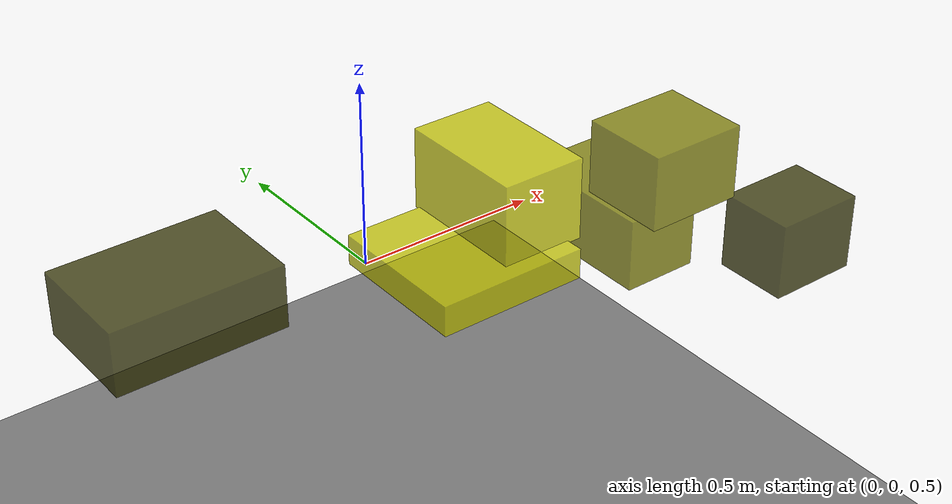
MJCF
<?xml version="1.0"?>
<mujoco model="obstacle_scene">
  <compiler angle="radian" coordinate="local"/>
  <option timestep="0.001" gravity="0 0 -9.81"/>

  <asset>
    <material name="obstacle_mat" rgba="0.8 0.8 0.0 0.8"/>
    <material name="ground_mat" rgba="0.5 0.5 0.5 1"/>
  </asset>

  <worldbody>
    <!-- Ground plane -->
    <geom name="ground" type="plane" size="3 3 0.1" material="ground_mat"/>

    <!-- Obstacles -->
    <body name="obstacle_0" pos="-0.664174 -0.245170 0.798753">
      <geom name="obs_0" type="box" size="0.204507 0.140523 0.078226" rgba="0.2 0.2 0.0 0.8"/>
    </body>
    <body name="obstacle_1" pos="0.448596 -0.393815 0.674141">
      <geom name="obs_1" type="box" size="0.097368 0.179979 0.092075" rgba="0.5 0.5 0.0 0.8"/>
    </body>
    <body name="obstacle_2" pos="-0.012947 -0.531470 0.982597">
      <geom name="obs_2" type="box" size="0.100036 0.157839 0.097443" rgba="0.8 0.8 0.0 0.8"/>
    </body>
    <body name="obstacle_3" pos="0.663150 -0.763062 0.721566">
      <geom name="obs_3" type="box" size="0.113149 0.091481 0.094375" rgba="0.2 0.2 0.0 0.8"/>
    </body>
    <body name="obstacle_4" pos="0.124518 -0.887528 1.153814">
      <geom name="obs_4" type="box" size="0.107688 0.096312 0.081074" rgba="0.5 0.5 0.0 0.8"/>
    </body>
    <body name="obstacle_5" pos="-0.123673 -0.559402 0.854988">
      <geom name="obs_5" type="box" size="0.177791 0.171632 0.036050" rgba="0.8 0.8 0.0 0.8"/>
    </body>
  </worldbody>
</mujoco>
